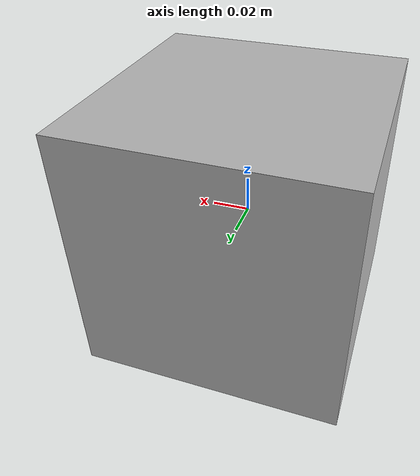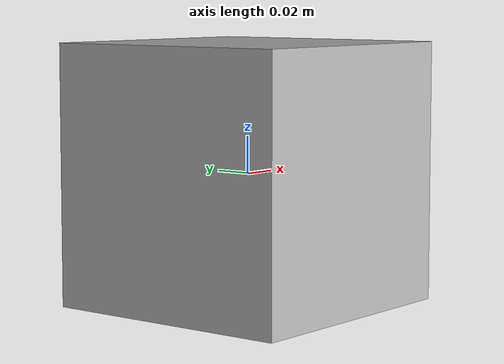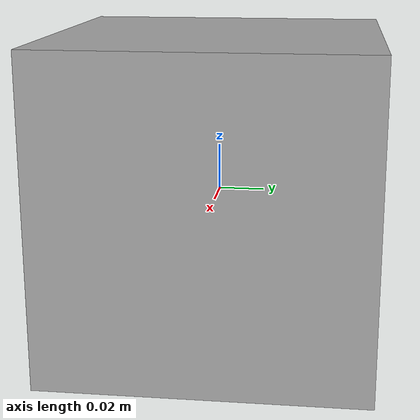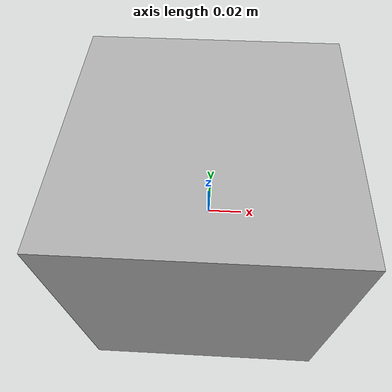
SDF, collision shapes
<?xml version="1.0" ?>
<sdf version="1.5">
  <model name="turtlebot3_burger">
    <pose>0.0 0.0 0.0 0.0 0.0 0.0</pose>

    <link name="base_footprint"/>

    <link name="base_link">

      <inertial>
        <pose>-0.158 -0.00385 0.047 0 0 0</pose>
        <inertia>
          <ixx>0.001</ixx>
          <ixy>0.000</ixy>
          <ixz>0.000</ixz>
          <iyy>0.001</iyy>
          <iyz>0.000</iyz>
          <izz>0.001</izz>
        </inertia>
        <mass>1.0</mass>
      </inertial>

      <collision name="base_collision">
        <pose>0 0 0 0 0 0</pose>
        <geometry>
          <box>
            <size>0.140 0.140 0.140</size>
          </box>
        </geometry>
      </collision>

      <visual name="base_visual">
        <pose>0 0 0 0 0 0</pose>
        <geometry>
          <mesh>
            <uri>model://turtlebot3_burger/meshes/burger_base.dae</uri>
            <scale>0.001 0.001 0.001</scale>
          </mesh>
        </geometry>
      </visual>
    </link>

    <link name="imu_link">

    </link>

    <link name="base_scan">
      <inertial>
        <pose>-0.00027 -0.0099 -7.10049019581049E-10 0 0 0</pose>
        <inertia>
          <ixx>0.001</ixx>
          <ixy>0.000</ixy>
          <ixz>0.000</ixz>
          <iyy>0.001</iyy>
          <iyz>0.000</iyz>
          <izz>0.001</izz>
        </inertia>
        <mass>0.125</mass>
      </inertial>

      <collision name="lidar_sensor_collision">
        <pose>0 0 0 0 0 0</pose>
        <geometry>
          <cylinder>
            <radius>0.0508</radius>
            <length>0.055</length>
          </cylinder>
        </geometry>
      </collision>

      <visual name="lidar_sensor_visual">
        <pose>0 0 0 0 0 0</pose>
        <geometry>
          <mesh>
            <uri>model://turtlebot3_burger/meshes/lds.dae</uri>
            <scale>0.001 0.001 0.001</scale>
          </mesh>
        </geometry>
      </visual>
    </link>

    <link name="wheel_left_link">

      <inertial>
        <pose>6.94232664756322E-05 9.31748289634271E-11 0.0293136663265147 0 0 0</pose>
        <inertia>
          <ixx>0.001</ixx>
          <ixy>0.000</ixy>
          <ixz>0.000</ixz>
          <iyy>0.001</iyy>
          <iyz>0.000</iyz>
          <izz>0.001</izz>
        </inertia>
        <mass>0.1</mass>
      </inertial>

      <collision name="wheel_left_collision">
        <pose>0 0 0 0 0 0</pose>
        <geometry>
          <cylinder>
            <radius>0.033</radius>
            <length>0.018</length>
          </cylinder>
        </geometry>
        <surface>
          <!-- This friction pamareter don't contain reliable data!! -->
          <friction>
            <ode>
              <mu>100000.0</mu>
              <mu2>100000.0</mu2>
              <fdir1>0 0 0</fdir1>
              <slip1>0.0</slip1>
              <slip2>0.0</slip2>
            </ode>
          </friction>
          <contact>
            <ode>
              <soft_cfm>0</soft_cfm>
              <soft_erp>0.2</soft_erp>
              <kp>1e+5</kp>
              <kd>1</kd>
              <max_vel>0.01</max_vel>
              <min_depth>0.001</min_depth>
            </ode>
          </contact>
        </surface>
      </collision>

      <visual name="wheel_left_visual">
        <pose>0 0 0 0 0 0</pose>
        <geometry>
          <mesh>
            <uri>model://turtlebot3_burger/meshes/tire.dae</uri>
            <scale>0.001 0.001 0.001</scale>
          </mesh>
        </geometry>
      </visual>
    </link>

    <link name="wheel_right_link">

      <inertial>
        <pose>6.94232664757398E-05 9.3174912230154E-11 0.0293136663265149 0 0 0</pose>
        <inertia>
          <ixx>0.001</ixx>
          <ixy>0.000</ixy>
          <ixz>0.000</ixz>
          <iyy>0.001</iyy>
          <iyz>0.000</iyz>
          <izz>0.001</izz>
        </inertia>
        <mass>0.1</mass>
      </inertial>

      <collision name="wheel_right_collision">
        <pose>0 0 0 0 0 0</pose>
        <geometry>
          <cylinder>
            <radius>0.033</radius>
            <length>0.018</length>
          </cylinder>
        </geometry>
        <surface>
          <!-- This friction pamareter don't contain reliable data!! -->
          <friction>
            <ode>
              <mu>100000.0</mu>
              <mu2>100000.0</mu2>
              <fdir1>0 0 0</fdir1>
              <slip1>0.0</slip1>
              <slip2>0.0</slip2>
            </ode>
          </friction>
          <contact>
            <ode>
              <soft_cfm>0</soft_cfm>
              <soft_erp>0.2</soft_erp>
              <kp>1e+5</kp>
              <kd>1</kd>
              <max_vel>0.01</max_vel>
              <min_depth>0.001</min_depth>
            </ode>
          </contact>
        </surface>
      </collision>

      <visual name="wheel_right_visual">
        <pose>0 0 0 0 0 0</pose>
        <geometry>
          <mesh>
            <uri>model://turtlebot3_burger/meshes/tire.dae</uri>
            <scale>0.001 0.001 0.001</scale>
          </mesh>
        </geometry>
      </visual>
    </link>

    <link name='caster_back_link'>
      <pose>-0.0175661121211732 -0.039912714651577 -2.47341047643346E-09 0 0 0</pose>
      <inertial>
        <mass>0.001</mass>
        <inertia>
          <ixx>0.00001</ixx>
          <ixy>0.000</ixy>
          <ixz>0.000</ixz>
          <iyy>0.00001</iyy>
          <iyz>0.000</iyz>
          <izz>0.00001</izz>
        </inertia>
      </inertial>
      <collision name='collision'>
        <geometry>
          <sphere>
            <radius>0.005000</radius>
          </sphere>
        </geometry>
        <surface>
          <contact>
            <ode>
              <soft_cfm>0</soft_cfm>
              <soft_erp>0.2</soft_erp>
              <kp>1e+5</kp>
              <kd>1</kd>
              <max_vel>0.01</max_vel>
              <min_depth>0.001</min_depth>
            </ode>
          </contact>
        </surface>
      </collision>
    </link>

    <joint name="base_joint" type="fixed">
      <parent>base_footprint</parent>
      <child>base_link</child>
      <pose>0.0 0.0 0.010 0 0 0</pose>
    </joint>

    <joint name="wheel_left_joint" type="revolute">
      <parent>base_link</parent>
      <child>wheel_left_link</child>
      <pose>0 0.149887301627792 -0.0599999999999983 -1.5707963267949 0.357463595053736 1.22790071016839E-29</pose>
      <axis>
        <xyz>0 0 1</xyz>
      </axis>
    </joint>

    <joint name="wheel_right_joint" type="revolute">
      <parent>base_link</parent>
      <child>wheel_right_link</child>
      <pose>0 -0.150112698372207 -0.06 1.57079632679477 1.52790873038023 -1.29473733419683E-13</pose>
      <axis>
        <xyz>0 0 -1</xyz>
      </axis>
    </joint>

    <joint name='caster_back_joint' type='ball'>
      <parent>base_link</parent>
      <child>caster_back_link</child>
    </joint>

    <joint name="imu_joint" type="fixed">
      <parent>base_link</parent>
      <child>imu_link</child>
      <pose>-0.032 0 0.068 0 0 0</pose>
      <axis>
        <xyz>0 0 1</xyz>
      </axis>
    </joint>

    <joint name="lidar_joint" type="fixed">
      <parent>base_link</parent>
      <child>base_scan</child>
      <pose>-0.258786796564404 6.46265772448196E-05 0.305000000000001 -1.5707963267949 -3.15213658012586E-15 -0.452067123629806</pose>
      <axis>
        <xyz>0 1 0</xyz>
      </axis>
    </joint>
  </model>
</sdf>
